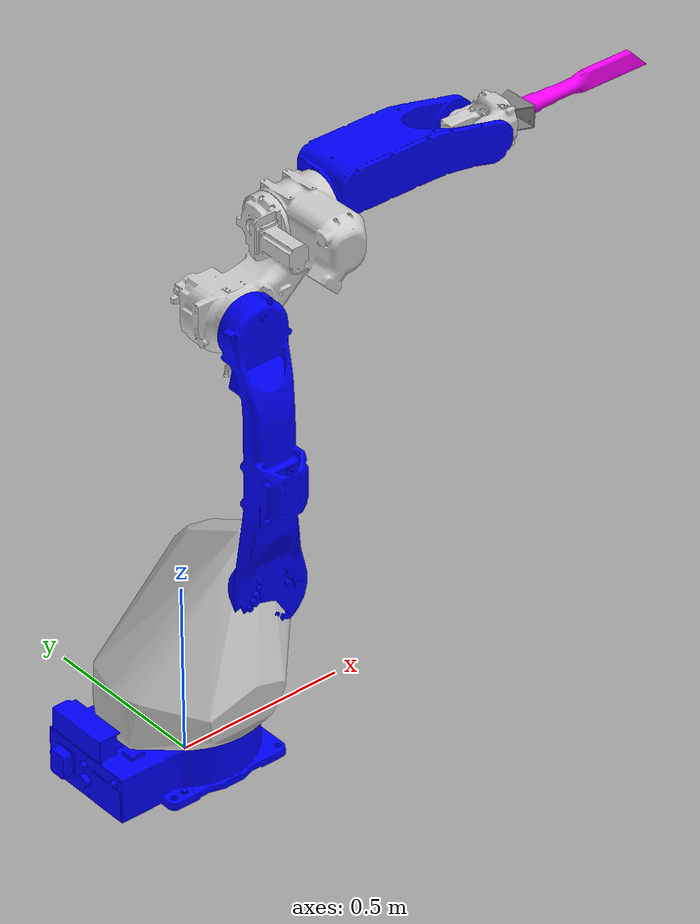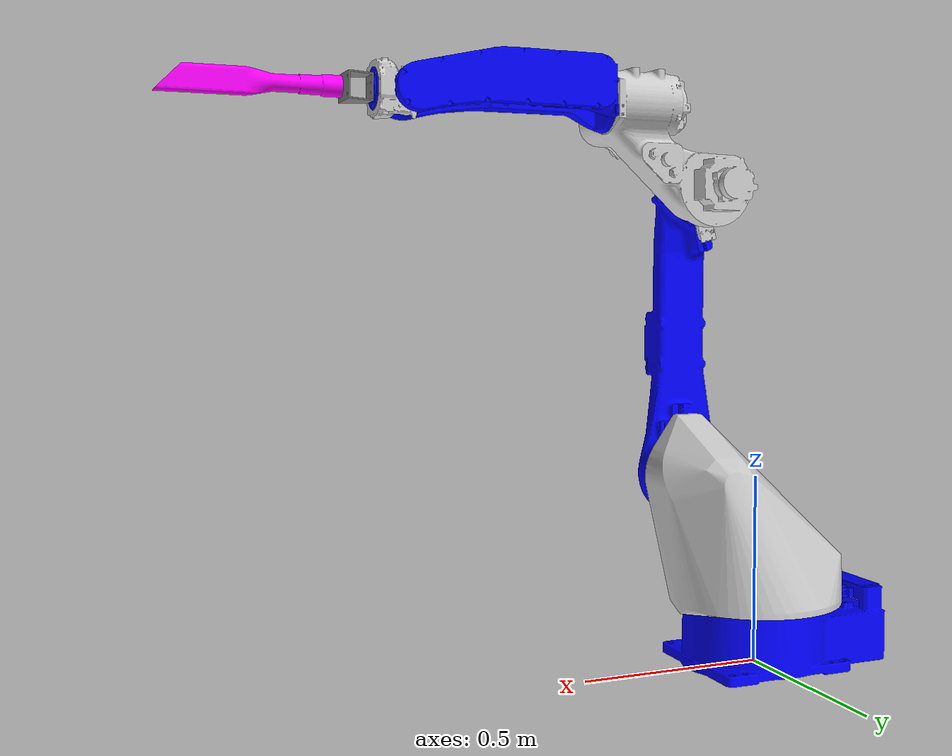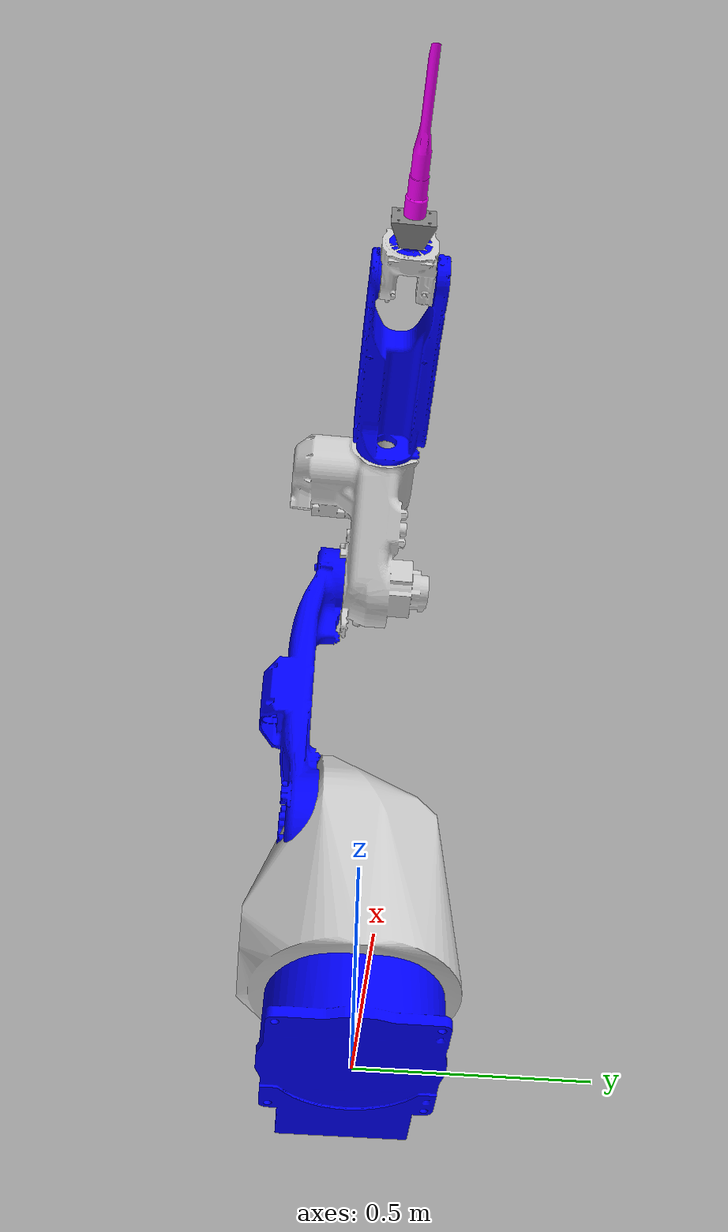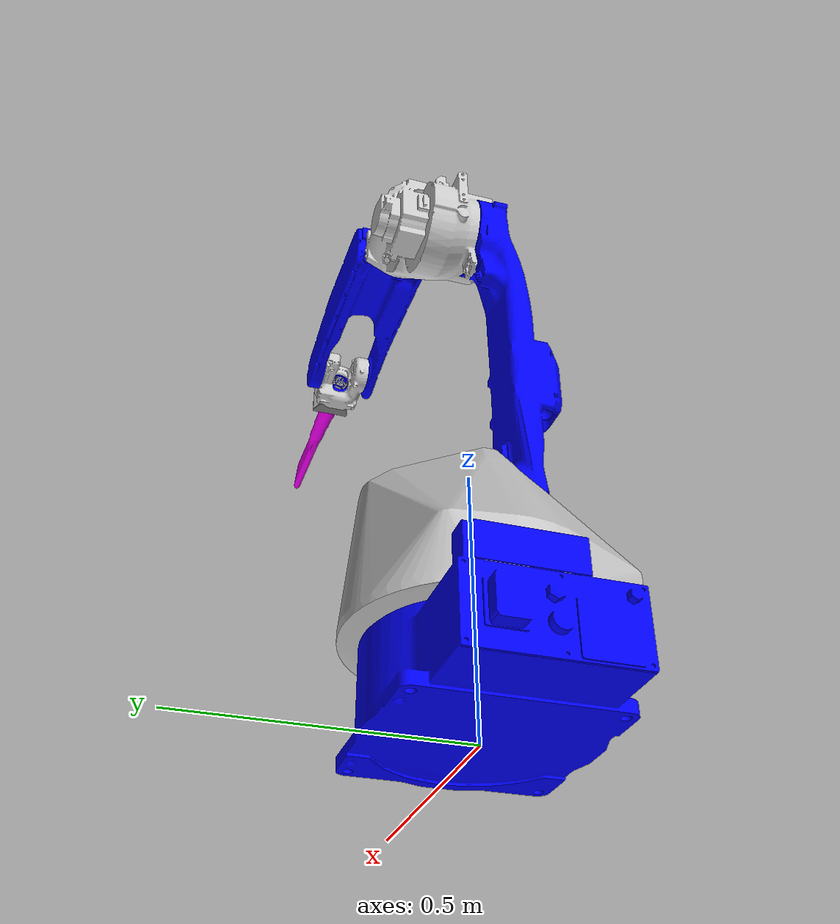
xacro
<?xml version="1.0" ?>
<robot name="gp25_workspace" xmlns:xacro="http://ros.org/wiki/xacro">
  <xacro:include filename="$(find yaskawa_gp25_support)/urdf/gp25_macro.xacro"/>
  <xacro:include filename="$(find blending_end_effector)/urdf/gp25_blending_eff_macro.xacro"/>
  <xacro:include filename="$(find yaskawa_gp25_support)/urdf/gp25_swri_demo_cell_macro.xacro"/>

  <link name="world_frame"/>

  <!-- instantiating arm  -->
  <xacro:yaskawa_gp25 prefix=""/>
  <!-- instantiating end effector  -->
  <xacro:blending_eff_definition prefix=""/>

  <xacro:swri_demo_cell prefix=""/>

  <!-- Attach the end effector to the end of the robot arm (tool0) -->
  <joint name="link_t_to_eff" type="fixed">
    <parent link="tool0"/>
    <child link="eff_frame"/>
    <origin xyz="0 0 0" rpy="0 0 ${half_pi}"/>
  </joint>

  <!-- start of arm-workcell joint definitions -->
  <joint name="world_to_base" type="fixed">
    <parent link="world_frame"/>
    <child link="base_link"/>
    <origin xyz="0 0 0" rpy="0 0 0"/>
  </joint>

  <joint name="world_to_demo_cell" type="fixed">
    <parent link="world_frame"/>
    <child link="demo_cell_base_link"/>
    <origin xyz="0 0 0" rpy="0 0 0"/>
  </joint>

</robot>

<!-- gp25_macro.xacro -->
<robot xmlns:xacro="http://ros.org/wiki/xacro">
	<xacro:macro name="yaskawa_gp25" params="prefix">
		<xacro:property name="pi" value="3.14159265358979323846264338327950288419716" />
		<!-- link list -->

		<link name="${prefix}base_link">
			<visual>
				<origin xyz="0 0 0" rpy="0 0 0"/>
				<geometry>
					<mesh filename="package://yaskawa_gp25_support/meshes/gp25/visual/base_axis.dae" />
				</geometry>
				<material name="blue">
					<color rgba="0 0 1 1"/>
				</material>
			</visual>
			<collision>
				<geometry>
					<mesh filename="package://yaskawa_gp25_support/meshes/gp25/collision/base_axis.stl" />
				</geometry>
				<material name="yellow">
					<color rgba="0 1 1 1"/>
				</material>
			</collision>
		</link>

		<link name="${prefix}link_1">
			<visual>
				<origin xyz="0 0 0" rpy="0 0 0"/>
				<geometry>
					<mesh filename="package://yaskawa_gp25_support/meshes/gp25/visual/s_axis.dae"/>
				</geometry>
				<material name="silver">
					<color rgba="0.8 0.8 0.8 1"/>
				</material>
			</visual>
			<collision>
				<geometry>
					<mesh filename="package://yaskawa_gp25_support/meshes/gp25/collision/s_axis.stl" />
				</geometry>
				<material name="yellow"/>
			</collision>
		</link>

		<link name="${prefix}link_2">
			<visual>
				<origin xyz="0 0 0" rpy="0 0 0"/>
				<geometry>
					<mesh filename="package://yaskawa_gp25_support/meshes/gp25/visual/l_axis.dae"/>
				</geometry>
				<material name="blue"/>
			</visual>
			<collision>
				<geometry>
					<mesh filename="package://yaskawa_gp25_support/meshes/gp25/collision/l_axis.stl" />
				</geometry>
				<material name="yellow"/>
			</collision>
		</link>

		<link name="${prefix}link_3">
			<visual>
				<origin xyz="0 0 0" rpy="0 0 0"/>
				<geometry>
					<mesh filename="package://yaskawa_gp25_support/meshes/gp25/visual/u_axis.dae"/>
				</geometry>
				<material name="silver"/>
			</visual>
			<collision>
				<geometry>
					<mesh filename="package://yaskawa_gp25_support/meshes/gp25/collision/u_axis.stl" />
				</geometry>
				<material name="yellow"/>
			</collision>
		</link>

		<link name="${prefix}link_4">
			<visual>
				<origin xyz="0 0 0" rpy="0 0 0"/>
				<geometry>
					<mesh filename="package://yaskawa_gp25_support/meshes/gp25/visual/r_axis.dae"/>
				</geometry>
				<material name="blue"/>
			</visual>
			<collision>
				<geometry>
					<mesh filename="package://yaskawa_gp25_support/meshes/gp25/collision/r_axis.stl" />
				</geometry>
				<material name="yellow"/>
			</collision>
		</link>

		<link name="${prefix}link_5">
			<visual>
				<origin xyz="0 0 0" rpy="0 0 0"/>
				<geometry>
					<mesh filename="package://yaskawa_gp25_support/meshes/gp25/visual/b_axis.dae"/>
				</geometry>
				<material name="silver"/>
			</visual>
			<collision>
				<geometry>
					<mesh filename="package://yaskawa_gp25_support/meshes/gp25/collision/b_axis.stl" />
				</geometry>
				<material name="yellow"/>
			</collision>
		</link>

		<link name="${prefix}link_6">
			<visual>
				<origin xyz="0 0 0" rpy="0 0 0"/>
				<geometry>
					<mesh filename="package://yaskawa_gp25_support/meshes/gp25/visual/t_axis.dae" />
				</geometry>
				<material name="blue"/>
			</visual>
			<collision>
				<geometry>
					<mesh filename="package://yaskawa_gp25_support/meshes/gp25/collision/t_axis.stl" />
				</geometry>
				<material name="yellow"/>
			</collision>
		</link>
		<link name="${prefix}tool0" />
		<!-- end of link list -->

		<!-- joint list -->

		<joint name="${prefix}joint_1" type="revolute">
			<parent link="${prefix}base_link"/>
			<child link="${prefix}link_1"/>
			<origin xyz="0 0 0" />
			<axis xyz="0 0 1" />
			<limit lower="${-180 / 180.0 * pi}" upper="${180 / 180.0 * pi}" effort="100" velocity="3.44" />
		</joint>
		<joint name="${prefix}joint_2" type="revolute">
			<parent link="${prefix}link_1"/>
			<child link="${prefix}link_2"/>
			<origin xyz="0.150 0 0.505" />
			<axis xyz="0 1 0" />
			<limit lower="${-105 / 180.0 * pi}" upper="${155 / 180.0 * pi}" effort="100" velocity="3.32" />
		</joint>
		<joint name="${prefix}joint_3" type="revolute">
			<parent link="${prefix}link_2"/>
			<child link="${prefix}link_3"/>
			<origin xyz="0 0 0.760" />
			<axis xyz="0 -1 0" />
			<!-- Limited wrt to datasheet to prevent self-collisions -->
			<limit lower="${-86 / 180.0 * pi}" upper="${163 / 180.0 * pi}" effort="100" velocity="3.67" />
		</joint>
		<joint name="${prefix}joint_4" type="revolute">
			<parent link="${prefix}link_3"/>
			<child link="${prefix}link_4"/>
			<origin xyz="0 0 0.200" />
			<axis xyz="-1 0 0" />
			<limit lower="${-200 / 180.0 * pi}" upper="${200 / 180.0 * pi}" effort="100" velocity="7.16" />
		</joint>
		<joint name="${prefix}joint_5" type="revolute">
			<parent link="${prefix}link_4"/>
			<child link="${prefix}link_5"/>
			<origin xyz="0.795 0 0" />
			<axis xyz="0 -1 0" />
			<limit lower="${-150 / 180.0 * pi}" upper="${150 / 180.0 * pi}" effort="100" velocity="7.16" />
		</joint>
		<joint name="${prefix}joint_6" type="revolute">
			<parent link="${prefix}link_5"/>
			<child link="${prefix}link_6"/>
			<origin xyz="0.100 0 0" />
			<axis xyz="-1 0 0" />
			<limit lower="${-455 / 180.0 * pi}" upper="${455 / 180.0 * pi}" effort="100" velocity="10.82" />
		</joint>
		<joint name="${prefix}joint_6-tool0" type="fixed">
			<parent link="${prefix}link_6" />
			<child link="${prefix}tool0" />
			<origin xyz= "0 0 0" rpy="0 ${-0.5 * pi} ${pi}" />
		</joint>
		<!-- end of joint list -->

<!-- ROS base_link to ABB World Coordinates transform -->
   		<link name="${prefix}base" />
    		<joint name="${prefix}base_link-base" type="fixed">
       			 <origin xyz="0 0 0" rpy="0 0 0"/>
        		 <parent link="${prefix}base_link"/>
        		 <child link="${prefix}base"/>
		</joint>
	</xacro:macro>
</robot>

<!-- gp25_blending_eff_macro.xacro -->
<robot xmlns:xacro="http://ros.org/wiki/xacro">
  <xacro:property name="ensenso_optical_x" value="0"/>
  <xacro:property name="ensenso_optical_y" value="0.0909"/>
  <xacro:property name="ensenso_optical_z" value="0.1255"/>

  <xacro:property name="keyence_optical_x" value="0"/>
  <xacro:property name="keyence_optical_y" value="0.216"/> <!--To the face of the sensor: y = 0.216-->
  <xacro:property name="keyence_optical_z" value="0.12192"/>

  <xacro:property name="keyence_tcp_x" value="0.0006"/>
  <xacro:property name="keyence_tcp_y" value="0.2863"/>
  <xacro:property name="keyence_tcp_z" value="0.0968"/>

  <xacro:property name="kinect_mount_x" value="0.09"/>
  <xacro:property name="kinect_mount_y" value="-0.065"/>
  <xacro:property name="kinect_mount_z" value="0.15"/>

<!-- als het goed is moet ik deze aanpassen omdat dit het werkpunt van de blending tool is -->
  <xacro:property name="blend_tcp_x" value="0.340"/>
  <xacro:property name="blend_tcp_y" value="0 "/>
  <xacro:property name="blend_tcp_z" value="-0.255"/> <!-- TBD 0.040 -->

  <xacro:property name="chuck_tcp_x" value="-0.2507"/>
  <xacro:property name="chuck_tcp_y" value="-0.0035"/>
  <xacro:property name="chuck_tcp_z" value="0.1228"/>

  <xacro:property name="half_pi" value="1.5707963267948966"/>
  <xacro:property name="pi" value="3.14159265358979323846"/>

  <xacro:macro name="blending_eff_definition" params="prefix">
    <!-- eff_frame is Base Link -->
    <link name="${prefix}eff_frame"/>

    <link name="${prefix}adapter_tube">
      <visual>
        <geometry>
          <mesh filename="package://blending_end_effector/meshes/visual/Adapter_Tube.STL"/>
        </geometry>
        <material name="grey">
          <color rgba="0.5 0.5 0.5 1.0"/>
        </material>
      </visual>
      <collision>
        <geometry>
          <mesh filename="package://blending_end_effector/meshes/collision/adapter_tube_convex_hull.STL"/>
        </geometry>
      </collision>
    </link>

    <joint name="${prefix}eff_frame_to_adapter_tube" type="fixed">
        <parent link="${prefix}eff_frame"/>
        <child link="${prefix}adapter_tube"/>
        <origin xyz="0 0 0" rpy="0 0 0"/>
    </joint>

    <link name="${prefix}bracket">
    </link>

    <joint name="${prefix}adapter_tube_to_bracket" type="fixed">
      <parent link="${prefix}adapter_tube"/>
      <child link="${prefix}bracket"/>
      <origin xyz="0 0 0" rpy="0 0 0"/>
    </joint>

    <link name="${prefix}blending_tool">
        <visual>
            <geometry>
                <mesh filename="package://blending_end_effector/meshes/visual/stofzuig15.stl"/>
            </geometry>
            <material name="purple">
                <color rgba="1 0 1 1"/>
            </material>
        </visual>
    </link>

    <joint name="${prefix}bracket_to_blending_tool" type="fixed">
        <parent link="${prefix}bracket"/>
        <child link="${prefix}blending_tool"/>
    </joint>

    <link name="${prefix}ensenso">
    </link>

    <joint name="${prefix}bracket_to_ensenso" type="fixed">
        <parent link="${prefix}bracket"/>
        <child link="${prefix}ensenso"/>
    </joint>

    <link name="${prefix}keyence">
    </link>

    <joint name="${prefix}bracket_to_keyence" type="fixed">
        <parent link="${prefix}bracket"/>
        <child link="${prefix}keyence"/>
    </joint>

    <!-- Frames for the motorized spindle on the end-->
    <link name="${prefix}chuck_tip_frame"/> <!--The tip of the chuck-->
    <link name="${prefix}tcp_frame"/> <!--The actual 'useful' work frame-->

    <joint name="${prefix}bracket_to_chuck" type="fixed">
        <parent link="${prefix}bracket"/>
        <child link="${prefix}chuck_tip_frame"/>
        <origin xyz="${chuck_tcp_x} ${chuck_tcp_y} ${chuck_tcp_z}" rpy="0 -${half_pi} 0"/>
    </joint>

    <joint name="${prefix}chuck_to_blend_tcp_frame" type="fixed">
        <parent link="${prefix}chuck_tip_frame"/>
        <child link="${prefix}tcp_frame"/>
        <origin xyz="${blend_tcp_x} ${blend_tcp_y} ${blend_tcp_z}" rpy="${0*pi} ${0.5*pi} ${-0.25*pi}"/>
    </joint>

    <!--Frames for the keyence profilometer-->
    <link name="${prefix}keyence_sensor_optical_frame"/>  <!--The emitter lens-->
    <link name="${prefix}keyence_tcp_frame"/> <!--The nominal scan location (8cm forward of emitter)-->

    <joint name="${prefix}bracket_to_keyence_sof" type="fixed">
        <parent link="${prefix}bracket"/>
        <child link="${prefix}keyence_sensor_optical_frame"/>
        <origin xyz="${keyence_tcp_x} ${keyence_tcp_y} ${keyence_tcp_z}" rpy="${half_pi} ${half_pi} 0 "/>
    </joint>

    <joint name="${prefix}bracket_to_keyence_tcp_f" type="fixed">
        <parent link="${prefix}bracket"/>
        <child link="${prefix}keyence_tcp_frame"/>
        <origin xyz="${keyence_tcp_x} ${keyence_tcp_y} ${keyence_tcp_z}" rpy="-${half_pi} ${half_pi} 0"/>
    </joint>

    <!--Frames related to the motion of the camera-->
    <link name="${prefix}ensenso_sensor_optical_frame"/>
    <link name="${prefix}kinect2_move_frame"/>

    <joint name="${prefix}bracket_to_ensenso_sof" type="fixed">
        <parent link="${prefix}bracket"/>
        <child link="${prefix}ensenso_sensor_optical_frame"/>
        <origin xyz="${ensenso_optical_x} ${ensenso_optical_y} ${ensenso_optical_z}" rpy="0 0 0"/>
    </joint>

    <joint name="${prefix}ensenso_move_frame_join" type="fixed">
      <parent link="${prefix}ensenso_sensor_optical_frame"/>
      <child link="${prefix}kinect2_move_frame"/>
      <origin rpy="0 -${half_pi} 0"/>
    </joint>

  </xacro:macro>
</robot>

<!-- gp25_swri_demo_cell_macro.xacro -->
<!-- Exports macro: "xacro:swri_demo_cell" with 1 arg: prefix -->
<!-- Root link: ${prefix}demo_cell_base_link -->
<!-- Origin is at the robot (IRB 2400) mounting location -->
<robot xmlns:xacro="http://ros.org/wiki/xacro">
  <xacro:property name="demo_cell_width" value="8"/> <!-- 60" table + 12" forward-->
  <xacro:property name="demo_cell_length" value="8"/> <!--36" table + 12" left + 12" right -->
  <xacro:property name="demo_cell_height" value="5"/> <!--96"  vertical-->

  <xacro:property name="robot_to_corner_x" value="-4"/> <!-- 17.7165" from back -->
  <xacro:property name="robot_to_corner_y" value="-4"/> <!-- middle of width -->

  <xacro:property name="demo_cell_wall_thickness" value="0.05"/>

  <!--
    The demo cell macro
    * All uses of "left" and "right" are relative to an observer looking into the cage
    * through the light curtains
  -->
  <xacro:macro name="swri_demo_cell" params="prefix">

  <link name="${prefix}demo_cell_base_link" />

  <link name="${prefix}demo_cell_corner"/>

  <link name="${prefix}demo_cell_back_wall">
    <collision>
      <geometry>
        <box size="${demo_cell_wall_thickness} ${demo_cell_length} ${demo_cell_height}"/>
      </geometry>
    </collision>
  </link>

  <link name="${prefix}demo_cell_right_wall">
    <collision>
      <geometry>
        <box size="${demo_cell_width} ${demo_cell_wall_thickness} ${demo_cell_height}"/>
      </geometry>
    </collision>
  </link>

  <link name="${prefix}demo_cell_left_wall">
    <collision>
      <geometry>
        <box size="${demo_cell_width} ${demo_cell_wall_thickness} ${demo_cell_height}"/>
      </geometry>
    </collision>
  </link>

  <!-- light curtains -->
  <link name="${prefix}demo_cell_front_wall">
    <collision>
      <geometry>
        <box size="${demo_cell_wall_thickness} ${demo_cell_length} ${demo_cell_height}"/>
      </geometry>
    </collision>
  </link>

  <link name="${prefix}demo_cell_roof">
    <collision>
      <geometry>
        <box size="${demo_cell_width} ${demo_cell_length} ${demo_cell_wall_thickness}"/>
      </geometry>
    </collision>
  </link>

  <link name="${prefix}demo_cell_floor">
    <collision>
      <geometry>
        <box size="${demo_cell_width} ${demo_cell_length} ${demo_cell_wall_thickness}"/>
      </geometry>
    </collision>
  </link>

  <joint name="${prefix}cell_baselink_to_corner" type="fixed">
    <parent link="${prefix}demo_cell_base_link"/>
    <child link="${prefix}demo_cell_corner"/>
    <origin xyz="${robot_to_corner_x} ${robot_to_corner_y} 0"/>
  </joint>

  <joint name="${prefix}cell_corner_to_back" type="fixed">
    <parent link="${prefix}demo_cell_corner"/>
    <child link="${prefix}demo_cell_back_wall"/>
    <origin xyz="${-0.5 * demo_cell_wall_thickness} ${demo_cell_length / 2.0} ${demo_cell_height / 2.0}"/>
  </joint>

  <joint name="${prefix}cell_corner_to_left" type="fixed">
    <parent link="${prefix}demo_cell_corner"/>
    <child link="${prefix}demo_cell_left_wall"/>
    <origin xyz="${demo_cell_width / 2.0} ${-0.5 * demo_cell_wall_thickness} ${demo_cell_height / 2.0}"/>
  </joint>

  <joint name="${prefix}cell_corner_to_front" type="fixed">
    <parent link="${prefix}demo_cell_corner"/>
    <child link="${prefix}demo_cell_front_wall"/>
    <origin xyz="${demo_cell_width + 0.5 * demo_cell_wall_thickness} ${demo_cell_length / 2.0} ${demo_cell_height / 2.0}"/>
  </joint>

  <joint name="${prefix}cell_corner_to_right" type="fixed">
    <parent link="${prefix}demo_cell_corner"/>
    <child link="${prefix}demo_cell_right_wall"/>
    <origin xyz="${demo_cell_width / 2.0} ${demo_cell_length + 0.5 * demo_cell_wall_thickness} ${demo_cell_height / 2.0}"/>
  </joint>

  <joint name="${prefix}cell_corner_to_roof" type="fixed">
    <parent link="${prefix}demo_cell_corner"/>
    <child link="${prefix}demo_cell_roof"/>
    <origin xyz="${demo_cell_width / 2.0} ${demo_cell_length / 2.0} ${demo_cell_height + 0.5 * demo_cell_wall_thickness}"/>
  </joint>

  <joint name="${prefix}cell_corner_to_floor" type="fixed">
    <parent link="${prefix}demo_cell_corner"/>
    <child link="${prefix}demo_cell_floor"/>
    <origin xyz="${demo_cell_width / 2.0} ${demo_cell_length / 2.0} ${-0.5 * demo_cell_wall_thickness}"/>
  </joint>

  </xacro:macro>
</robot>
